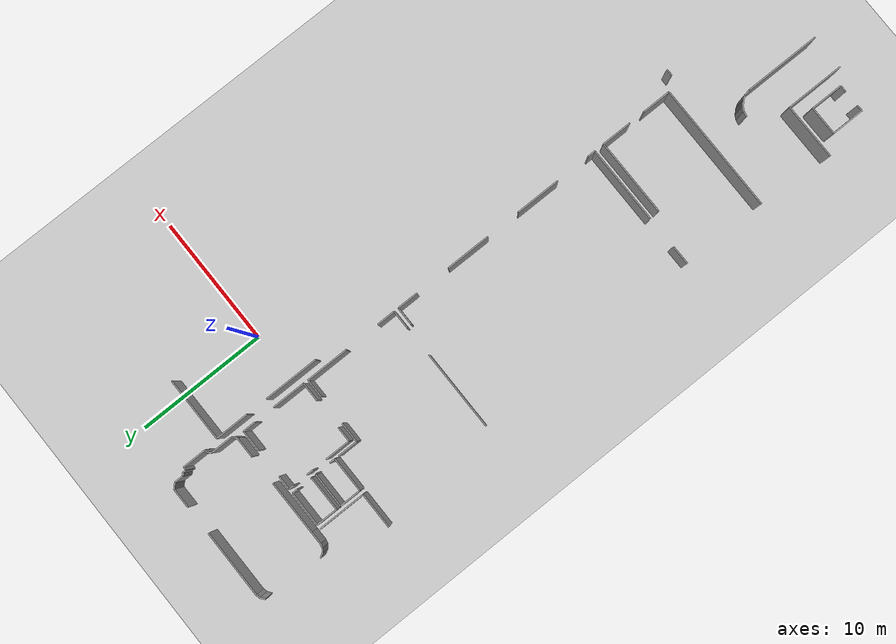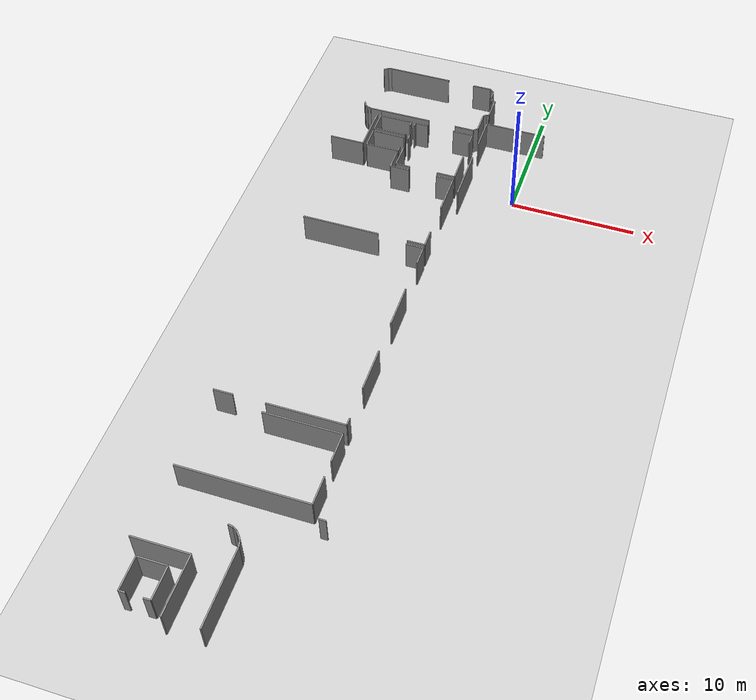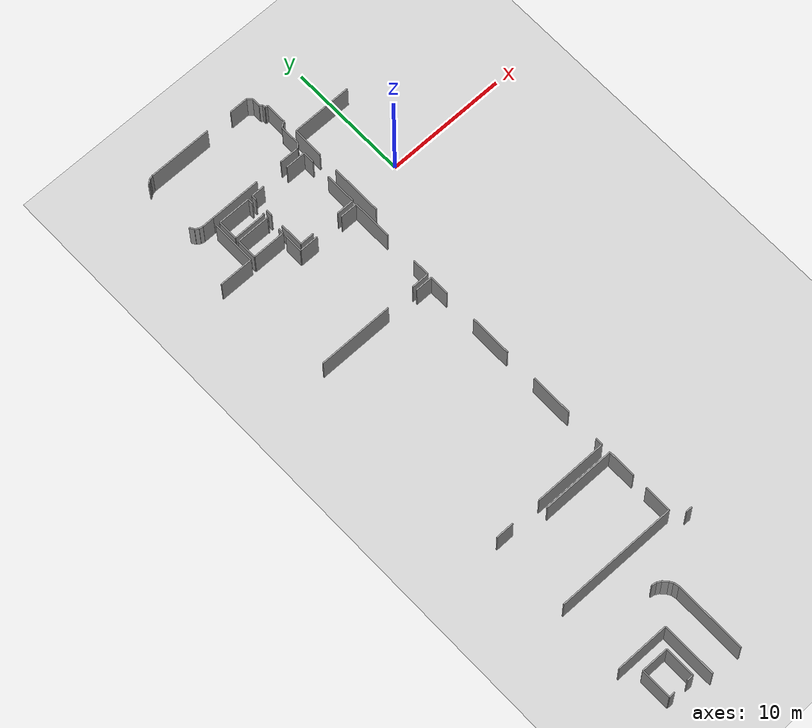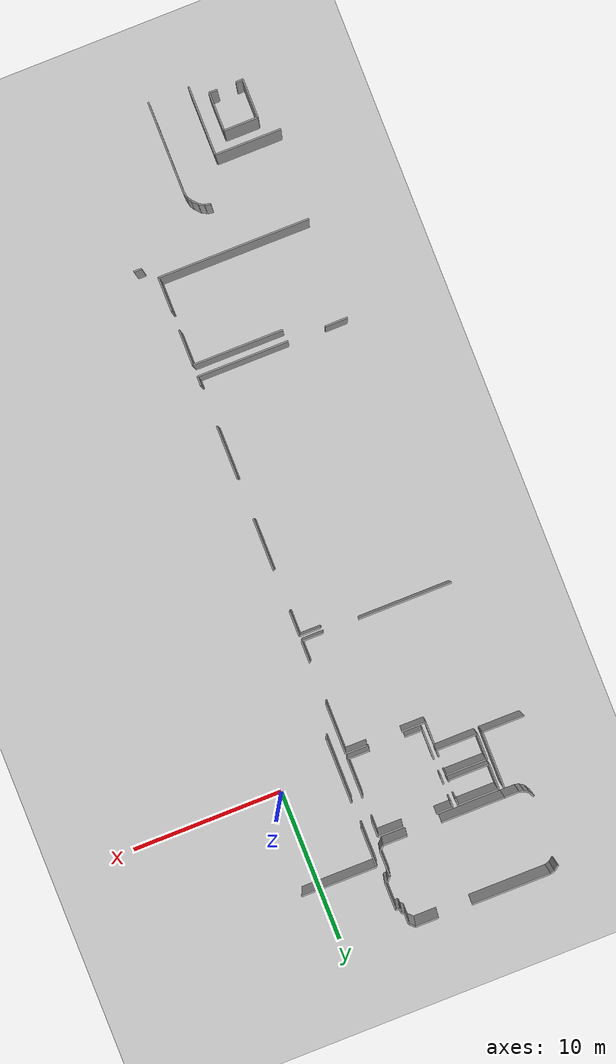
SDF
<sdf version="1.6">
 <world name="default">
  <model name="ground_plane">
   <static>1</static>
   <link name="link">
    <collision name="collision">
     <geometry><plane><normal>0 0 1</normal><size>100 100</size></plane></geometry>
     <surface><friction><ode><mu>100</mu><mu2>50</mu2></ode></friction></surface>
    </collision>
    <visual name="visual">
     <cast_shadows>0</cast_shadows>
     <geometry><plane><normal>0 0 1</normal><size>100 100</size></plane></geometry>
     <material>
      <script><uri>file://media/materials/scripts/gazebo.material</uri><name>Gazebo/Grey</name></script>
     </material>
    </visual>
   </link>
  </model>
  <model name="0510045926_A-40">
   <static>1</static>
   <link name="Wall_1083">
    <collision name="Wall_1083_Collision">
     <geometry><box><size>3.66740067139 0.1 2.5</size></box></geometry>
     <pose>1.8337003357 0 1.25 0 0 0</pose>
    </collision>
    <visual name="Wall_1083_Visual">
     <pose>1.8337003357 0 1.25 0 0 0</pose>
     <geometry><box><size>3.66740067139 0.1 2.5</size></box></geometry>
     <material>
      <script><uri>file://media/materials/scripts/gazebo.material</uri><name>Gazebo/Grey</name></script>
      <ambient>1 1 1 1</ambient>
     </material>
    </visual>
    <pose>120.832094833 -96.724697461 0 0 0 -1.57079632679</pose>
   </link>
   <link name="Wall_1084">
    <collision name="Wall_1084_Collision">
     <geometry><box><size>2.78634116624 0.1 2.5</size></box></geometry>
     <pose>1.39317058312 0 1.25 0 0 0</pose>
    </collision>
    <visual name="Wall_1084_Visual">
     <pose>1.39317058312 0 1.25 0 0 0</pose>
     <geometry><box><size>2.78634116624 0.1 2.5</size></box></geometry>
     <material>
      <script><uri>file://media/materials/scripts/gazebo.material</uri><name>Gazebo/Grey</name></script>
      <ambient>1 1 1 1</ambient>
     </material>
    </visual>
    <pose>120.832094833 -100.392098132 0 0 0 3.14159265359</pose>
   </link>
   <link name="Wall_1089">
    <collision name="Wall_1089_Collision">
     <geometry><box><size>0.963048044523 0.1 2.5</size></box></geometry>
     <pose>0.481524022261 0 1.25 0 0 0</pose>
    </collision>
    <visual name="Wall_1089_Visual">
     <pose>0.481524022261 0 1.25 0 0 0</pose>
     <geometry><box><size>0.963048044523 0.1 2.5</size></box></geometry>
     <material>
      <script><uri>file://media/materials/scripts/gazebo.material</uri><name>Gazebo/Grey</name></script>
      <ambient>1 1 1 1</ambient>
     </material>
    </visual>
    <pose>121.028308891 -96.1492546785 0 0 0 3.14159265359</pose>
   </link>
   <link name="Wall_1090">
    <collision name="Wall_1090_Collision">
     <geometry><box><size>0.297971849061 0.1 2.5</size></box></geometry>
     <pose>0.148985924531 0 1.25 0 0 0</pose>
    </collision>
    <visual name="Wall_1090_Visual">
     <pose>0.148985924531 0 1.25 0 0 0</pose>
     <geometry><box><size>0.297971849061 0.1 2.5</size></box></geometry>
     <material>
      <script><uri>file://media/materials/scripts/gazebo.material</uri><name>Gazebo/Grey</name></script>
      <ambient>1 1 1 1</ambient>
     </material>
    </visual>
    <pose>120.065260847 -96.1492546785 0 0 0 2.90074619835</pose>
   </link>
   <link name="Wall_1091">
    <collision name="Wall_1091_Collision">
     <geometry><box><size>0.314413232889 0.1 2.5</size></box></geometry>
     <pose>0.157206616445 0 1.25 0 0 0</pose>
    </collision>
    <visual name="Wall_1091_Visual">
     <pose>0.157206616445 0 1.25 0 0 0</pose>
     <geometry><box><size>0.314413232889 0.1 2.5</size></box></geometry>
     <material>
      <script><uri>file://media/materials/scripts/gazebo.material</uri><name>Gazebo/Grey</name></script>
      <ambient>1 1 1 1</ambient>
     </material>
    </visual>
    <pose>119.775889531 -96.0781810221 0 0 0 2.54978353014</pose>
   </link>
   <link name="Wall_1092">
    <collision name="Wall_1092_Collision">
     <geometry><box><size>0.408727519813 0.1 2.5</size></box></geometry>
     <pose>0.204363759906 0 1.25 0 0 0</pose>
    </collision>
    <visual name="Wall_1092_Visual">
     <pose>0.204363759906 0 1.25 0 0 0</pose>
     <geometry><box><size>0.408727519813 0.1 2.5</size></box></geometry>
     <material>
      <script><uri>file://media/materials/scripts/gazebo.material</uri><name>Gazebo/Grey</name></script>
      <ambient>1 1 1 1</ambient>
     </material>
    </visual>
    <pose>119.514947678 -95.9027813914 0 0 0 2.1072750657</pose>
   </link>
   <link name="Wall_1095">
    <collision name="Wall_1095_Collision">
     <geometry><box><size>0.394009426553 0.1 2.5</size></box></geometry>
     <pose>0.197004713276 0 1.25 0 0 0</pose>
    </collision>
    <visual name="Wall_1095_Visual">
     <pose>0.197004713276 0 1.25 0 0 0</pose>
     <geometry><box><size>0.394009426553 0.1 2.5</size></box></geometry>
     <material>
      <script><uri>file://media/materials/scripts/gazebo.material</uri><name>Gazebo/Grey</name></script>
      <ambient>1 1 1 1</ambient>
     </material>
    </visual>
    <pose>119.469003636 -91.0497198302 0 0 0 0.64968579994</pose>
   </link>
   <link name="Wall_1096">
    <collision name="Wall_1096_Collision">
     <geometry><box><size>0.318074464847 0.1 2.5</size></box></geometry>
     <pose>0.159037232424 0 1.25 0 0 0</pose>
    </collision>
    <visual name="Wall_1096_Visual">
     <pose>0.159037232424 0 1.25 0 0 0</pose>
     <geometry><box><size>0.318074464847 0.1 2.5</size></box></geometry>
     <material>
      <script><uri>file://media/materials/scripts/gazebo.material</uri><name>Gazebo/Grey</name></script>
      <ambient>1 1 1 1</ambient>
     </material>
    </visual>
    <pose>119.782743062 -90.8113692467 0 0 0 0.259882708532</pose>
   </link>
   <link name="Wall_1097">
    <collision name="Wall_1097_Collision">
     <geometry><box><size>5.21756788486 0.1 2.5</size></box></geometry>
     <pose>2.60878394243 0 1.25 0 0 0</pose>
    </collision>
    <visual name="Wall_1097_Visual">
     <pose>2.60878394243 0 1.25 0 0 0</pose>
     <geometry><box><size>5.21756788486 0.1 2.5</size></box></geometry>
     <material>
      <script><uri>file://media/materials/scripts/gazebo.material</uri><name>Gazebo/Grey</name></script>
      <ambient>1 1 1 1</ambient>
     </material>
    </visual>
    <pose>120.090136626 -90.7296345418 0 0 0 0.0</pose>
   </link>
   <link name="Wall_1098">
    <collision name="Wall_1098_Collision">
     <geometry><box><size>1.53011428898 0.1 2.5</size></box></geometry>
     <pose>0.765057144489 0 1.25 0 0 0</pose>
    </collision>
    <visual name="Wall_1098_Visual">
     <pose>0.765057144489 0 1.25 0 0 0</pose>
     <geometry><box><size>1.53011428898 0.1 2.5</size></box></geometry>
     <material>
      <script><uri>file://media/materials/scripts/gazebo.material</uri><name>Gazebo/Grey</name></script>
      <ambient>1 1 1 1</ambient>
     </material>
    </visual>
    <pose>127.513018536 -90.7296345418 0 0 0 0.0</pose>
   </link>
   <link name="Wall_1099">
    <collision name="Wall_1099_Collision">
     <geometry><box><size>0.472983838857 0.1 2.5</size></box></geometry>
     <pose>0.236491919429 0 1.25 0 0 0</pose>
    </collision>
    <visual name="Wall_1099_Visual">
     <pose>0.236491919429 0 1.25 0 0 0</pose>
     <geometry><box><size>0.472983838857 0.1 2.5</size></box></geometry>
     <material>
      <script><uri>file://media/materials/scripts/gazebo.material</uri><name>Gazebo/Grey</name></script>
      <ambient>1 1 1 1</ambient>
     </material>
    </visual>
    <pose>129.043132825 -90.7296345418 0 0 0 -0.773634000248</pose>
   </link>
   <link name="Wall_1100">
    <collision name="Wall_1100_Collision">
     <geometry><box><size>0.672915225627 0.1 2.5</size></box></geometry>
     <pose>0.336457612814 0 1.25 0 0 0</pose>
    </collision>
    <visual name="Wall_1100_Visual">
     <pose>0.336457612814 0 1.25 0 0 0</pose>
     <geometry><box><size>0.672915225627 0.1 2.5</size></box></geometry>
     <material>
      <script><uri>file://media/materials/scripts/gazebo.material</uri><name>Gazebo/Grey</name></script>
      <ambient>1 1 1 1</ambient>
     </material>
    </visual>
    <pose>129.381494197 -91.0601270442 0 0 0 -1.57079632679</pose>
   </link>
   <link name="Wall_1101">
    <collision name="Wall_1101_Collision">
     <geometry><box><size>0.232515854169 0.1 2.5</size></box></geometry>
     <pose>0.116257927084 0 1.25 0 0 0</pose>
    </collision>
    <visual name="Wall_1101_Visual">
     <pose>0.116257927084 0 1.25 0 0 0</pose>
     <geometry><box><size>0.232515854169 0.1 2.5</size></box></geometry>
     <material>
      <script><uri>file://media/materials/scripts/gazebo.material</uri><name>Gazebo/Grey</name></script>
      <ambient>1 1 1 1</ambient>
     </material>
    </visual>
    <pose>129.381494197 -91.7330422698 0 0 0 -0.685652700092</pose>
   </link>
   <link name="Wall_1102">
    <collision name="Wall_1102_Collision">
     <geometry><box><size>0.25865734248 0.1 2.5</size></box></geometry>
     <pose>0.12932867124 0 1.25 0 0 0</pose>
    </collision>
    <visual name="Wall_1102_Visual">
     <pose>0.12932867124 0 1.25 0 0 0</pose>
     <geometry><box><size>0.25865734248 0.1 2.5</size></box></geometry>
     <material>
      <script><uri>file://media/materials/scripts/gazebo.material</uri><name>Gazebo/Grey</name></script>
      <ambient>1 1 1 1</ambient>
     </material>
    </visual>
    <pose>129.561462848 -91.8802662724 0 0 0 -1.57079632679</pose>
   </link>
   <link name="Wall_1103">
    <collision name="Wall_1103_Collision">
     <geometry><box><size>0.249011631965 0.1 2.5</size></box></geometry>
     <pose>0.124505815983 0 1.25 0 0 0</pose>
    </collision>
    <visual name="Wall_1103_Visual">
     <pose>0.124505815983 0 1.25 0 0 0</pose>
     <geometry><box><size>0.249011631965 0.1 2.5</size></box></geometry>
     <material>
      <script><uri>file://media/materials/scripts/gazebo.material</uri><name>Gazebo/Grey</name></script>
      <ambient>1 1 1 1</ambient>
     </material>
    </visual>
    <pose>129.561462848 -92.1389236149 0 0 0 0.0</pose>
   </link>
   <link name="Wall_1104">
    <collision name="Wall_1104_Collision">
     <geometry><box><size>1.81847026646 0.1 2.5</size></box></geometry>
     <pose>0.909235133231 0 1.25 0 0 0</pose>
    </collision>
    <visual name="Wall_1104_Visual">
     <pose>0.909235133231 0 1.25 0 0 0</pose>
     <geometry><box><size>1.81847026646 0.1 2.5</size></box></geometry>
     <material>
      <script><uri>file://media/materials/scripts/gazebo.material</uri><name>Gazebo/Grey</name></script>
      <ambient>1 1 1 1</ambient>
     </material>
    </visual>
    <pose>129.81047448 -92.1389236149 0 0 0 -1.57079632679</pose>
   </link>
   <link name="Wall_1105">
    <collision name="Wall_1105_Collision">
     <geometry><box><size>0.19012203093 0.1 2.5</size></box></geometry>
     <pose>0.0950610154649 0 1.25 0 0 0</pose>
    </collision>
    <visual name="Wall_1105_Visual">
     <pose>0.0950610154649 0 1.25 0 0 0</pose>
     <geometry><box><size>0.19012203093 0.1 2.5</size></box></geometry>
     <material>
      <script><uri>file://media/materials/scripts/gazebo.material</uri><name>Gazebo/Grey</name></script>
      <ambient>1 1 1 1</ambient>
     </material>
    </visual>
    <pose>129.81047448 -93.9573938813 0 0 0 3.14159265359</pose>
   </link>
   <link name="Wall_1106">
    <collision name="Wall_1106_Collision">
     <geometry><box><size>0.34192645498 0.1 2.5</size></box></geometry>
     <pose>0.17096322749 0 1.25 0 0 0</pose>
    </collision>
    <visual name="Wall_1106_Visual">
     <pose>0.17096322749 0 1.25 0 0 0</pose>
     <geometry><box><size>0.34192645498 0.1 2.5</size></box></geometry>
     <material>
      <script><uri>file://media/materials/scripts/gazebo.material</uri><name>Gazebo/Grey</name></script>
      <ambient>1 1 1 1</ambient>
     </material>
    </visual>
    <pose>129.620352449 -93.9573938813 0 0 0 -2.32364296707</pose>
   </link>
   <link name="Wall_1107">
    <collision name="Wall_1107_Collision">
     <geometry><box><size>1.6230177113 0.1 2.5</size></box></geometry>
     <pose>0.811508855651 0 1.25 0 0 0</pose>
    </collision>
    <visual name="Wall_1107_Visual">
     <pose>0.811508855651 0 1.25 0 0 0</pose>
     <geometry><box><size>1.6230177113 0.1 2.5</size></box></geometry>
     <material>
      <script><uri>file://media/materials/scripts/gazebo.material</uri><name>Gazebo/Grey</name></script>
      <ambient>1 1 1 1</ambient>
     </material>
    </visual>
    <pose>129.386570886 -94.2069131823 0 0 0 -1.57079632679</pose>
   </link>
   <link name="Wall_1108">
    <collision name="Wall_1108_Collision">
     <geometry><box><size>0.436874594215 0.1 2.5</size></box></geometry>
     <pose>0.218437297107 0 1.25 0 0 0</pose>
    </collision>
    <visual name="Wall_1108_Visual">
     <pose>0.218437297107 0 1.25 0 0 0</pose>
     <geometry><box><size>0.436874594215 0.1 2.5</size></box></geometry>
     <material>
      <script><uri>file://media/materials/scripts/gazebo.material</uri><name>Gazebo/Grey</name></script>
      <ambient>1 1 1 1</ambient>
     </material>
    </visual>
    <pose>129.386570886 -95.8299308936 0 0 0 -2.35783787409</pose>
   </link>
   <link name="Wall_1109">
    <collision name="Wall_1109_Collision">
     <geometry><box><size>1.60017260745 0.1 2.5</size></box></geometry>
     <pose>0.800086303726 0 1.25 0 0 0</pose>
    </collision>
    <visual name="Wall_1109_Visual">
     <pose>0.800086303726 0 1.25 0 0 0</pose>
     <geometry><box><size>1.60017260745 0.1 2.5</size></box></geometry>
     <material>
      <script><uri>file://media/materials/scripts/gazebo.material</uri><name>Gazebo/Grey</name></script>
      <ambient>1 1 1 1</ambient>
     </material>
    </visual>
    <pose>129.077146647 -96.1383397955 0 0 0 3.14159265359</pose>
   </link>
   <link name="Wall_1110">
    <collision name="Wall_1110_Collision">
     <geometry><box><size>4.18523725808 0.1 2.5</size></box></geometry>
     <pose>2.09261862904 0 1.25 0 0 0</pose>
    </collision>
    <visual name="Wall_1110_Visual">
     <pose>2.09261862904 0 1.25 0 0 0</pose>
     <geometry><box><size>4.18523725808 0.1 2.5</size></box></geometry>
     <material>
      <script><uri>file://media/materials/scripts/gazebo.material</uri><name>Gazebo/Grey</name></script>
      <ambient>1 1 1 1</ambient>
     </material>
    </visual>
    <pose>125.213531917 -96.1383397955 0 0 0 -3.1389847022</pose>
   </link>
   <link name="Wall_1139">
    <collision name="Wall_1139_Collision">
     <geometry><box><size>5.96282593935 0.1 2.5</size></box></geometry>
     <pose>2.98141296967 0 1.25 0 0 0</pose>
    </collision>
    <visual name="Wall_1139_Visual">
     <pose>2.98141296967 0 1.25 0 0 0</pose>
     <geometry><box><size>5.96282593935 0.1 2.5</size></box></geometry>
     <material>
      <script><uri>file://media/materials/scripts/gazebo.material</uri><name>Gazebo/Grey</name></script>
      <ambient>1 1 1 1</ambient>
     </material>
    </visual>
    <pose>123.211539316 -127.997106287 0 0 0 0.0</pose>
   </link>
   <link name="Wall_1140">
    <collision name="Wall_1140_Collision">
     <geometry><box><size>2.33045442719 0.1 2.5</size></box></geometry>
     <pose>1.1652272136 0 1.25 0 0 0</pose>
    </collision>
    <visual name="Wall_1140_Visual">
     <pose>1.1652272136 0 1.25 0 0 0</pose>
     <geometry><box><size>2.33045442719 0.1 2.5</size></box></geometry>
     <material>
      <script><uri>file://media/materials/scripts/gazebo.material</uri><name>Gazebo/Grey</name></script>
      <ambient>1 1 1 1</ambient>
     </material>
    </visual>
    <pose>129.174365255 -127.997106287 0 0 0 -1.57079632679</pose>
   </link>
   <link name="Wall_1141">
    <collision name="Wall_1141_Collision">
     <geometry><box><size>2.22612845294 0.1 2.5</size></box></geometry>
     <pose>1.11306422647 0 1.25 0 0 0</pose>
    </collision>
    <visual name="Wall_1141_Visual">
     <pose>1.11306422647 0 1.25 0 0 0</pose>
     <geometry><box><size>2.22612845294 0.1 2.5</size></box></geometry>
     <material>
      <script><uri>file://media/materials/scripts/gazebo.material</uri><name>Gazebo/Grey</name></script>
      <ambient>1 1 1 1</ambient>
     </material>
    </visual>
    <pose>129.174365255 -131.566019177 0 0 0 -1.57079632679</pose>
   </link>
   <link name="Wall_1142">
    <collision name="Wall_1142_Collision">
     <geometry><box><size>9.96276066697 0.1 2.5</size></box></geometry>
     <pose>4.98138033348 0 1.25 0 0 0</pose>
    </collision>
    <visual name="Wall_1142_Visual">
     <pose>4.98138033348 0 1.25 0 0 0</pose>
     <geometry><box><size>9.96276066697 0.1 2.5</size></box></geometry>
     <material>
      <script><uri>file://media/materials/scripts/gazebo.material</uri><name>Gazebo/Grey</name></script>
      <ambient>1 1 1 1</ambient>
     </material>
    </visual>
    <pose>129.174365255 -133.79214763 0 0 0 3.14011491001</pose>
   </link>
   <link name="Wall_1157">
    <collision name="Wall_1157_Collision">
     <geometry><box><size>1.41005057652 0.1 2.5</size></box></geometry>
     <pose>0.705025288261 0 1.25 0 0 0</pose>
    </collision>
    <visual name="Wall_1157_Visual">
     <pose>0.705025288261 0 1.25 0 0 0</pose>
     <geometry><box><size>1.41005057652 0.1 2.5</size></box></geometry>
     <material>
      <script><uri>file://media/materials/scripts/gazebo.material</uri><name>Gazebo/Grey</name></script>
      <ambient>1 1 1 1</ambient>
     </material>
    </visual>
    <pose>127.758222651 -110.030193612 0 0 0 0.0</pose>
   </link>
   <link name="Wall_1158">
    <collision name="Wall_1158_Collision">
     <geometry><box><size>1.63139424938 0.1 2.5</size></box></geometry>
     <pose>0.81569712469 0 1.25 0 0 0</pose>
    </collision>
    <visual name="Wall_1158_Visual">
     <pose>0.81569712469 0 1.25 0 0 0</pose>
     <geometry><box><size>1.63139424938 0.1 2.5</size></box></geometry>
     <material>
      <script><uri>file://media/materials/scripts/gazebo.material</uri><name>Gazebo/Grey</name></script>
      <ambient>1 1 1 1</ambient>
     </material>
    </visual>
    <pose>129.168273227 -110.030193612 0 0 0 -1.57079632679</pose>
   </link>
   <link name="Wall_1159">
    <collision name="Wall_1159_Collision">
     <geometry><box><size>3.4427571502 0.1 2.5</size></box></geometry>
     <pose>1.7213785751 0 1.25 0 0 0</pose>
    </collision>
    <visual name="Wall_1159_Visual">
     <pose>1.7213785751 0 1.25 0 0 0</pose>
     <geometry><box><size>3.4427571502 0.1 2.5</size></box></geometry>
     <material>
      <script><uri>file://media/materials/scripts/gazebo.material</uri><name>Gazebo/Grey</name></script>
      <ambient>1 1 1 1</ambient>
     </material>
    </visual>
    <pose>129.168273227 -114.366701992 0 0 0 -1.57079632679</pose>
   </link>
   <link name="Wall_1160">
    <collision name="Wall_1160_Collision">
     <geometry><box><size>3.46230240572 0.1 2.5</size></box></geometry>
     <pose>1.73115120286 0 1.25 0 0 0</pose>
    </collision>
    <visual name="Wall_1160_Visual">
     <pose>1.73115120286 0 1.25 0 0 0</pose>
     <geometry><box><size>3.46230240572 0.1 2.5</size></box></geometry>
     <material>
      <script><uri>file://media/materials/scripts/gazebo.material</uri><name>Gazebo/Grey</name></script>
      <ambient>1 1 1 1</ambient>
     </material>
    </visual>
    <pose>129.168273227 -120.487159148 0 0 0 -1.57079632679</pose>
   </link>
   <link name="Wall_1161">
    <collision name="Wall_1161_Collision">
     <geometry><box><size>0.594734203563 0.1 2.5</size></box></geometry>
     <pose>0.297367101781 0 1.25 0 0 0</pose>
    </collision>
    <visual name="Wall_1161_Visual">
     <pose>0.297367101781 0 1.25 0 0 0</pose>
     <geometry><box><size>0.594734203563 0.1 2.5</size></box></geometry>
     <material>
      <script><uri>file://media/materials/scripts/gazebo.material</uri><name>Gazebo/Grey</name></script>
      <ambient>1 1 1 1</ambient>
     </material>
    </visual>
    <pose>129.168273227 -126.632492084 0 0 0 -1.57079632679</pose>
   </link>
   <link name="Wall_1162">
    <collision name="Wall_1162_Collision">
     <geometry><box><size>6.00013960897 0.1 2.5</size></box></geometry>
     <pose>3.00006980448 0 1.25 0 0 0</pose>
    </collision>
    <visual name="Wall_1162_Visual">
     <pose>3.00006980448 0 1.25 0 0 0</pose>
     <geometry><box><size>6.00013960897 0.1 2.5</size></box></geometry>
     <material>
      <script><uri>file://media/materials/scripts/gazebo.material</uri><name>Gazebo/Grey</name></script>
      <ambient>1 1 1 1</ambient>
     </material>
    </visual>
    <pose>129.168273227 -127.227226287 0 0 0 3.14159265359</pose>
   </link>
   <link name="Wall_1163">
    <collision name="Wall_1163_Collision">
     <geometry><box><size>1.49130718656 0.1 2.5</size></box></geometry>
     <pose>0.745653593279 0 1.25 0 0 0</pose>
    </collision>
    <visual name="Wall_1163_Visual">
     <pose>0.745653593279 0 1.25 0 0 0</pose>
     <geometry><box><size>1.49130718656 0.1 2.5</size></box></geometry>
     <material>
      <script><uri>file://media/materials/scripts/gazebo.material</uri><name>Gazebo/Grey</name></script>
      <ambient>1 1 1 1</ambient>
     </material>
    </visual>
    <pose>120.717869313 -127.227226287 0 0 0 -3.13529486451</pose>
   </link>
   <link name="Wall_1166">
    <collision name="Wall_1166_Collision">
     <geometry><box><size>1.51437655077 0.1 2.5</size></box></geometry>
     <pose>0.757188275385 0 1.25 0 0 0</pose>
    </collision>
    <visual name="Wall_1166_Visual">
     <pose>0.757188275385 0 1.25 0 0 0</pose>
     <geometry><box><size>1.51437655077 0.1 2.5</size></box></geometry>
     <material>
      <script><uri>file://media/materials/scripts/gazebo.material</uri><name>Gazebo/Grey</name></script>
      <ambient>1 1 1 1</ambient>
     </material>
    </visual>
    <pose>123.871762817 -100.726651987 0 0 0 -1.57079632679</pose>
   </link>
   <link name="Wall_1167">
    <collision name="Wall_1167_Collision">
     <geometry><box><size>1.57351998629 0.1 2.5</size></box></geometry>
     <pose>0.786759993146 0 1.25 0 0 0</pose>
    </collision>
    <visual name="Wall_1167_Visual">
     <pose>0.786759993146 0 1.25 0 0 0</pose>
     <geometry><box><size>1.57351998629 0.1 2.5</size></box></geometry>
     <material>
      <script><uri>file://media/materials/scripts/gazebo.material</uri><name>Gazebo/Grey</name></script>
      <ambient>1 1 1 1</ambient>
     </material>
    </visual>
    <pose>123.871762817 -102.241028537 0 0 0 0.0</pose>
   </link>
   <link name="Wall_1168">
    <collision name="Wall_1168_Collision">
     <geometry><box><size>1.42350380434 0.1 2.5</size></box></geometry>
     <pose>0.711751902172 0 1.25 0 0 0</pose>
    </collision>
    <visual name="Wall_1168_Visual">
     <pose>0.711751902172 0 1.25 0 0 0</pose>
     <geometry><box><size>1.42350380434 0.1 2.5</size></box></geometry>
     <material>
      <script><uri>file://media/materials/scripts/gazebo.material</uri><name>Gazebo/Grey</name></script>
      <ambient>1 1 1 1</ambient>
     </material>
    </visual>
    <pose>127.743500251 -102.241028537 0 0 0 0.0</pose>
   </link>
   <link name="Wall_1169">
    <collision name="Wall_1169_Collision">
     <geometry><box><size>3.2957869821 0.1 2.5</size></box></geometry>
     <pose>1.64789349105 0 1.25 0 0 0</pose>
    </collision>
    <visual name="Wall_1169_Visual">
     <pose>1.64789349105 0 1.25 0 0 0</pose>
     <geometry><box><size>3.2957869821 0.1 2.5</size></box></geometry>
     <material>
      <script><uri>file://media/materials/scripts/gazebo.material</uri><name>Gazebo/Grey</name></script>
      <ambient>1 1 1 1</ambient>
     </material>
    </visual>
    <pose>129.167004055 -102.241028537 0 0 0 -1.57079632679</pose>
   </link>
   <link name="Wall_1170">
    <collision name="Wall_1170_Collision">
     <geometry><box><size>1.42324996986 0.1 2.5</size></box></geometry>
     <pose>0.711624984929 0 1.25 0 0 0</pose>
    </collision>
    <visual name="Wall_1170_Visual">
     <pose>0.711624984929 0 1.25 0 0 0</pose>
     <geometry><box><size>1.42324996986 0.1 2.5</size></box></geometry>
     <material>
      <script><uri>file://media/materials/scripts/gazebo.material</uri><name>Gazebo/Grey</name></script>
      <ambient>1 1 1 1</ambient>
     </material>
    </visual>
    <pose>129.167004055 -108.251321526 0 0 0 -1.57079632679</pose>
   </link>
   <link name="Wall_1171">
    <collision name="Wall_1171_Collision">
     <geometry><box><size>1.44406439781 0.1 2.5</size></box></geometry>
     <pose>0.722032198905 0 1.25 0 0 0</pose>
    </collision>
    <visual name="Wall_1171_Visual">
     <pose>0.722032198905 0 1.25 0 0 0</pose>
     <geometry><box><size>1.44406439781 0.1 2.5</size></box></geometry>
     <material>
      <script><uri>file://media/materials/scripts/gazebo.material</uri><name>Gazebo/Grey</name></script>
      <ambient>1 1 1 1</ambient>
     </material>
    </visual>
    <pose>129.167004055 -109.674571496 0 0 0 3.14159265359</pose>
   </link>
   <link name="Wall_1172">
    <collision name="Wall_1172_Collision">
     <geometry><box><size>6.18239410479 0.1 2.5</size></box></geometry>
     <pose>3.09119705239 0 1.25 0 0 0</pose>
    </collision>
    <visual name="Wall_1172_Visual">
     <pose>3.09119705239 0 1.25 0 0 0</pose>
     <geometry><box><size>6.18239410479 0.1 2.5</size></box></geometry>
     <material>
      <script><uri>file://media/materials/scripts/gazebo.material</uri><name>Gazebo/Grey</name></script>
      <ambient>1 1 1 1</ambient>
     </material>
    </visual>
    <pose>125.391977561 -109.674571496 0 0 0 -3.14093573137</pose>
   </link>
   <link name="Wall_1173">
    <collision name="Wall_1173_Collision">
     <geometry><box><size>1.64941649797 0.1 2.5</size></box></geometry>
     <pose>0.824708248986 0 1.25 0 0 0</pose>
    </collision>
    <visual name="Wall_1173_Visual">
     <pose>0.824708248986 0 1.25 0 0 0</pose>
     <geometry><box><size>1.64941649797 0.1 2.5</size></box></geometry>
     <material>
      <script><uri>file://media/materials/scripts/gazebo.material</uri><name>Gazebo/Grey</name></script>
      <ambient>1 1 1 1</ambient>
     </material>
    </visual>
    <pose>121.169694701 -98.3964513939 0 0 0 1.57079632679</pose>
   </link>
   <link name="Wall_1174">
    <collision name="Wall_1174_Collision">
     <geometry><box><size>2.6977529302 0.1 2.5</size></box></geometry>
     <pose>1.3488764651 0 1.25 0 0 0</pose>
    </collision>
    <visual name="Wall_1174_Visual">
     <pose>1.3488764651 0 1.25 0 0 0</pose>
     <geometry><box><size>2.6977529302 0.1 2.5</size></box></geometry>
     <material>
      <script><uri>file://media/materials/scripts/gazebo.material</uri><name>Gazebo/Grey</name></script>
      <ambient>1 1 1 1</ambient>
     </material>
    </visual>
    <pose>121.169694701 -96.7470348959 0 0 0 0.0</pose>
   </link>
   <link name="Wall_1175">
    <collision name="Wall_1175_Collision">
     <geometry><box><size>0.440402835331 0.1 2.5</size></box></geometry>
     <pose>0.220201417666 0 1.25 0 0 0</pose>
    </collision>
    <visual name="Wall_1175_Visual">
     <pose>0.220201417666 0 1.25 0 0 0</pose>
     <geometry><box><size>0.440402835331 0.1 2.5</size></box></geometry>
     <material>
      <script><uri>file://media/materials/scripts/gazebo.material</uri><name>Gazebo/Grey</name></script>
      <ambient>1 1 1 1</ambient>
     </material>
    </visual>
    <pose>123.867447631 -96.7470348959 0 0 0 -1.57079632679</pose>
   </link>
   <link name="Wall_1176">
    <collision name="Wall_1176_Collision">
     <geometry><box><size>0.101279960402 0.1 2.5</size></box></geometry>
     <pose>0.0506399802009 0 1.25 0 0 0</pose>
    </collision>
    <visual name="Wall_1176_Visual">
     <pose>0.0506399802009 0 1.25 0 0 0</pose>
     <geometry><box><size>0.101279960402 0.1 2.5</size></box></geometry>
     <material>
      <script><uri>file://media/materials/scripts/gazebo.material</uri><name>Gazebo/Grey</name></script>
      <ambient>1 1 1 1</ambient>
     </material>
    </visual>
    <pose>123.867447631 -98.2857795574 0 0 0 -1.57079632679</pose>
   </link>
   <link name="Wall_1177">
    <collision name="Wall_1177_Collision">
     <geometry><box><size>2.69776927845 0.1 2.5</size></box></geometry>
     <pose>1.34888463922 0 1.25 0 0 0</pose>
    </collision>
    <visual name="Wall_1177_Visual">
     <pose>1.34888463922 0 1.25 0 0 0</pose>
     <geometry><box><size>2.69776927845 0.1 2.5</size></box></geometry>
     <material>
      <script><uri>file://media/materials/scripts/gazebo.material</uri><name>Gazebo/Grey</name></script>
      <ambient>1 1 1 1</ambient>
     </material>
    </visual>
    <pose>123.867447631 -98.3870595178 0 0 0 -3.13811129769</pose>
   </link>
   <link name="Wall_1178">
    <collision name="Wall_1178_Collision">
     <geometry><box><size>1.66058521541 0.1 2.5</size></box></geometry>
     <pose>0.830292607705 0 1.25 0 0 0</pose>
    </collision>
    <visual name="Wall_1178_Visual">
     <pose>0.830292607705 0 1.25 0 0 0</pose>
     <geometry><box><size>1.66058521541 0.1 2.5</size></box></geometry>
     <material>
      <script><uri>file://media/materials/scripts/gazebo.material</uri><name>Gazebo/Grey</name></script>
      <ambient>1 1 1 1</ambient>
     </material>
    </visual>
    <pose>121.172994549 -100.392859636 0 0 0 1.57079632679</pose>
   </link>
   <link name="Wall_1179">
    <collision name="Wall_1179_Collision">
     <geometry><box><size>2.70587563379 0.1 2.5</size></box></geometry>
     <pose>1.3529378169 0 1.25 0 0 0</pose>
    </collision>
    <visual name="Wall_1179_Visual">
     <pose>1.3529378169 0 1.25 0 0 0</pose>
     <geometry><box><size>2.70587563379 0.1 2.5</size></box></geometry>
     <material>
      <script><uri>file://media/materials/scripts/gazebo.material</uri><name>Gazebo/Grey</name></script>
      <ambient>1 1 1 1</ambient>
     </material>
    </visual>
    <pose>121.172994549 -98.7322744205 0 0 0 0.0</pose>
   </link>
   <link name="Wall_1180">
    <collision name="Wall_1180_Collision">
     <geometry><box><size>0.0860498911685 0.1 2.5</size></box></geometry>
     <pose>0.0430249455842 0 1.25 0 0 0</pose>
    </collision>
    <visual name="Wall_1180_Visual">
     <pose>0.0430249455842 0 1.25 0 0 0</pose>
     <geometry><box><size>0.0860498911685 0.1 2.5</size></box></geometry>
     <material>
      <script><uri>file://media/materials/scripts/gazebo.material</uri><name>Gazebo/Grey</name></script>
      <ambient>1 1 1 1</ambient>
     </material>
    </visual>
    <pose>123.878870183 -98.7322744205 0 0 0 -1.57079632679</pose>
   </link>
   <link name="Wall_1181">
    <collision name="Wall_1181_Collision">
     <geometry><box><size>0.44141817328 0.1 2.5</size></box></geometry>
     <pose>0.22070908664 0 1.25 0 0 0</pose>
    </collision>
    <visual name="Wall_1181_Visual">
     <pose>0.22070908664 0 1.25 0 0 0</pose>
     <geometry><box><size>0.44141817328 0.1 2.5</size></box></geometry>
     <material>
      <script><uri>file://media/materials/scripts/gazebo.material</uri><name>Gazebo/Grey</name></script>
      <ambient>1 1 1 1</ambient>
     </material>
    </visual>
    <pose>123.878870183 -99.9445879314 0 0 0 -1.57079632679</pose>
   </link>
   <link name="Wall_1182">
    <collision name="Wall_1182_Collision">
     <geometry><box><size>2.7058843132 0.1 2.5</size></box></geometry>
     <pose>1.3529421566 0 1.25 0 0 0</pose>
    </collision>
    <visual name="Wall_1182_Visual">
     <pose>1.3529421566 0 1.25 0 0 0</pose>
     <geometry><box><size>2.7058843132 0.1 2.5</size></box></geometry>
     <material>
      <script><uri>file://media/materials/scripts/gazebo.material</uri><name>Gazebo/Grey</name></script>
      <ambient>1 1 1 1</ambient>
     </material>
    </visual>
    <pose>123.878870183 -100.386006105 0 0 0 -3.13905982599</pose>
   </link>
   <link name="Wall_1183">
    <collision name="Wall_1183_Collision">
     <geometry><box><size>1.96036374482 0.1 2.5</size></box></geometry>
     <pose>0.98018187241 0 1.25 0 0 0</pose>
    </collision>
    <visual name="Wall_1183_Visual">
     <pose>0.98018187241 0 1.25 0 0 0</pose>
     <geometry><box><size>1.96036374482 0.1 2.5</size></box></geometry>
     <material>
      <script><uri>file://media/materials/scripts/gazebo.material</uri><name>Gazebo/Grey</name></script>
      <ambient>1 1 1 1</ambient>
     </material>
    </visual>
    <pose>124.221292906 -101.87576071 0 0 0 1.57079632679</pose>
   </link>
   <link name="Wall_1184">
    <collision name="Wall_1184_Collision">
     <geometry><box><size>0.527468064449 0.1 2.5</size></box></geometry>
     <pose>0.263734032224 0 1.25 0 0 0</pose>
    </collision>
    <visual name="Wall_1184_Visual">
     <pose>0.263734032224 0 1.25 0 0 0</pose>
     <geometry><box><size>0.527468064449 0.1 2.5</size></box></geometry>
     <material>
      <script><uri>file://media/materials/scripts/gazebo.material</uri><name>Gazebo/Grey</name></script>
      <ambient>1 1 1 1</ambient>
     </material>
    </visual>
    <pose>124.221292906 -98.7967483802 0 0 0 1.57079632679</pose>
   </link>
   <link name="Wall_1185">
    <collision name="Wall_1185_Collision">
     <geometry><box><size>0.412481041737 0.1 2.5</size></box></geometry>
     <pose>0.206240520868 0 1.25 0 0 0</pose>
    </collision>
    <visual name="Wall_1185_Visual">
     <pose>0.206240520868 0 1.25 0 0 0</pose>
     <geometry><box><size>0.412481041737 0.1 2.5</size></box></geometry>
     <material>
      <script><uri>file://media/materials/scripts/gazebo.material</uri><name>Gazebo/Grey</name></script>
      <ambient>1 1 1 1</ambient>
     </material>
    </visual>
    <pose>124.221292906 -97.1534239099 0 0 0 1.57079632679</pose>
   </link>
   <link name="Wall_1186">
    <collision name="Wall_1186_Collision">
     <geometry><box><size>1.09250363301 0.1 2.5</size></box></geometry>
     <pose>0.546251816503 0 1.25 0 0 0</pose>
    </collision>
    <visual name="Wall_1186_Visual">
     <pose>0.546251816503 0 1.25 0 0 0</pose>
     <geometry><box><size>1.09250363301 0.1 2.5</size></box></geometry>
     <material>
      <script><uri>file://media/materials/scripts/gazebo.material</uri><name>Gazebo/Grey</name></script>
      <ambient>1 1 1 1</ambient>
     </material>
    </visual>
    <pose>124.221292906 -96.7409428682 0 0 0 0.0</pose>
   </link>
   <link name="Wall_1187">
    <collision name="Wall_1187_Collision">
     <geometry><box><size>1.6707385949 0.1 2.5</size></box></geometry>
     <pose>0.83536929745 0 1.25 0 0 0</pose>
    </collision>
    <visual name="Wall_1187_Visual">
     <pose>0.83536929745 0 1.25 0 0 0</pose>
     <geometry><box><size>1.6707385949 0.1 2.5</size></box></geometry>
     <material>
      <script><uri>file://media/materials/scripts/gazebo.material</uri><name>Gazebo/Grey</name></script>
      <ambient>1 1 1 1</ambient>
     </material>
    </visual>
    <pose>127.512764702 -96.7409428682 0 0 0 0.0</pose>
   </link>
   <link name="Wall_1188">
    <collision name="Wall_1188_Collision">
     <geometry><box><size>0.96964774119 0.1 2.5</size></box></geometry>
     <pose>0.484823870595 0 1.25 0 0 0</pose>
    </collision>
    <visual name="Wall_1188_Visual">
     <pose>0.484823870595 0 1.25 0 0 0</pose>
     <geometry><box><size>0.96964774119 0.1 2.5</size></box></geometry>
     <material>
      <script><uri>file://media/materials/scripts/gazebo.material</uri><name>Gazebo/Grey</name></script>
      <ambient>1 1 1 1</ambient>
     </material>
    </visual>
    <pose>129.183503297 -96.7409428682 0 0 0 -1.57079632679</pose>
   </link>
   <link name="Wall_1189">
    <collision name="Wall_1189_Collision">
     <geometry><box><size>2.58022756262 0.1 2.5</size></box></geometry>
     <pose>1.29011378131 0 1.25 0 0 0</pose>
    </collision>
    <visual name="Wall_1189_Visual">
     <pose>1.29011378131 0 1.25 0 0 0</pose>
     <geometry><box><size>2.58022756262 0.1 2.5</size></box></geometry>
     <material>
      <script><uri>file://media/materials/scripts/gazebo.material</uri><name>Gazebo/Grey</name></script>
      <ambient>1 1 1 1</ambient>
     </material>
    </visual>
    <pose>129.183503297 -99.2942639752 0 0 0 -1.57079632679</pose>
   </link>
   <link name="Wall_1190">
    <collision name="Wall_1190_Collision">
     <geometry><box><size>1.46259431538 0.1 2.5</size></box></geometry>
     <pose>0.731297157688 0 1.25 0 0 0</pose>
    </collision>
    <visual name="Wall_1190_Visual">
     <pose>0.731297157688 0 1.25 0 0 0</pose>
     <geometry><box><size>1.46259431538 0.1 2.5</size></box></geometry>
     <material>
      <script><uri>file://media/materials/scripts/gazebo.material</uri><name>Gazebo/Grey</name></script>
      <ambient>1 1 1 1</ambient>
     </material>
    </visual>
    <pose>129.183503297 -101.874491538 0 0 0 3.14159265359</pose>
   </link>
   <link name="Wall_1191">
    <collision name="Wall_1191_Collision">
     <geometry><box><size>1.17296985209 0.1 2.5</size></box></geometry>
     <pose>0.586484926044 0 1.25 0 0 0</pose>
    </collision>
    <visual name="Wall_1191_Visual">
     <pose>0.586484926044 0 1.25 0 0 0</pose>
     <geometry><box><size>1.17296985209 0.1 2.5</size></box></geometry>
     <material>
      <script><uri>file://media/materials/scripts/gazebo.material</uri><name>Gazebo/Grey</name></script>
      <ambient>1 1 1 1</ambient>
     </material>
    </visual>
    <pose>125.394262071 -101.874491538 0 0 0 -3.14051063713</pose>
   </link>
   <link name="Wall_1192">
    <collision name="Wall_1192_Collision">
     <geometry><box><size>4.23421308136 0.1 2.5</size></box></geometry>
     <pose>2.11710654068 0 1.25 0 0 0</pose>
    </collision>
    <visual name="Wall_1192_Visual">
     <pose>2.11710654068 0 1.25 0 0 0</pose>
     <geometry><box><size>4.23421308136 0.1 2.5</size></box></geometry>
     <material>
      <script><uri>file://media/materials/scripts/gazebo.material</uri><name>Gazebo/Grey</name></script>
      <ambient>1 1 1 1</ambient>
     </material>
    </visual>
    <pose>129.933330372 -103.512485484 0 0 0 1.57079632679</pose>
   </link>
   <link name="Wall_1193">
    <collision name="Wall_1193_Collision">
     <geometry><box><size>2.56702816928 0.1 2.5</size></box></geometry>
     <pose>1.28351408464 0 1.25 0 0 0</pose>
    </collision>
    <visual name="Wall_1193_Visual">
     <pose>1.28351408464 0 1.25 0 0 0</pose>
     <geometry><box><size>2.56702816928 0.1 2.5</size></box></geometry>
     <material>
      <script><uri>file://media/materials/scripts/gazebo.material</uri><name>Gazebo/Grey</name></script>
      <ambient>1 1 1 1</ambient>
     </material>
    </visual>
    <pose>129.933330372 -97.6113413249 0 0 0 1.57079632679</pose>
   </link>
   <link name="Wall_1194">
    <collision name="Wall_1194_Collision">
     <geometry><box><size>4.96804858392 0.1 2.5</size></box></geometry>
     <pose>2.48402429196 0 1.25 0 0 0</pose>
    </collision>
    <visual name="Wall_1194_Visual">
     <pose>2.48402429196 0 1.25 0 0 0</pose>
     <geometry><box><size>4.96804858392 0.1 2.5</size></box></geometry>
     <material>
      <script><uri>file://media/materials/scripts/gazebo.material</uri><name>Gazebo/Grey</name></script>
      <ambient>1 1 1 1</ambient>
     </material>
    </visual>
    <pose>129.933330372 -95.0443131556 0 0 0 0.0</pose>
   </link>
   <link name="Wall_1485">
    <collision name="Wall_1485_Collision">
     <geometry><box><size>2.52057645812 0.1 2.5</size></box></geometry>
     <pose>1.26028822906 0 1.25 0 0 0</pose>
    </collision>
    <visual name="Wall_1485_Visual">
     <pose>1.26028822906 0 1.25 0 0 0</pose>
     <geometry><box><size>2.52057645812 0.1 2.5</size></box></geometry>
     <material>
      <script><uri>file://media/materials/scripts/gazebo.material</uri><name>Gazebo/Grey</name></script>
      <ambient>1 1 1 1</ambient>
     </material>
    </visual>
    <pose>119.86295476 -143.2741349 0 0 0 1.57079632679</pose>
   </link>
   <link name="Wall_1486">
    <collision name="Wall_1486_Collision">
     <geometry><box><size>2.23552032897 0.1 2.5</size></box></geometry>
     <pose>1.11776016448 0 1.25 0 0 0</pose>
    </collision>
    <visual name="Wall_1486_Visual">
     <pose>1.11776016448 0 1.25 0 0 0</pose>
     <geometry><box><size>2.23552032897 0.1 2.5</size></box></geometry>
     <material>
      <script><uri>file://media/materials/scripts/gazebo.material</uri><name>Gazebo/Grey</name></script>
      <ambient>1 1 1 1</ambient>
     </material>
    </visual>
    <pose>119.86295476 -140.753558442 0 0 0 0.0</pose>
   </link>
   <link name="Wall_1487">
    <collision name="Wall_1487_Collision">
     <geometry><box><size>2.5050925544 0.1 2.5</size></box></geometry>
     <pose>1.2525462772 0 1.25 0 0 0</pose>
    </collision>
    <visual name="Wall_1487_Visual">
     <pose>1.2525462772 0 1.25 0 0 0</pose>
     <geometry><box><size>2.5050925544 0.1 2.5</size></box></geometry>
     <material>
      <script><uri>file://media/materials/scripts/gazebo.material</uri><name>Gazebo/Grey</name></script>
      <ambient>1 1 1 1</ambient>
     </material>
    </visual>
    <pose>122.098475089 -140.753558442 0 0 0 -1.57079632679</pose>
   </link>
   <link name="Wall_1488">
    <collision name="Wall_1488_Collision">
     <geometry><box><size>0.53559076804 0.1 2.5</size></box></geometry>
     <pose>0.26779538402 0 1.25 0 0 0</pose>
    </collision>
    <visual name="Wall_1488_Visual">
     <pose>0.26779538402 0 1.25 0 0 0</pose>
     <geometry><box><size>0.53559076804 0.1 2.5</size></box></geometry>
     <material>
      <script><uri>file://media/materials/scripts/gazebo.material</uri><name>Gazebo/Grey</name></script>
      <ambient>1 1 1 1</ambient>
     </material>
    </visual>
    <pose>122.098475089 -143.258650997 0 0 0 3.14159265359</pose>
   </link>
   <link name="Wall_1489">
    <collision name="Wall_1489_Collision">
     <geometry><box><size>0.478982179922 0.1 2.5</size></box></geometry>
     <pose>0.239491089961 0 1.25 0 0 0</pose>
    </collision>
    <visual name="Wall_1489_Visual">
     <pose>0.239491089961 0 1.25 0 0 0</pose>
     <geometry><box><size>0.478982179922 0.1 2.5</size></box></geometry>
     <material>
      <script><uri>file://media/materials/scripts/gazebo.material</uri><name>Gazebo/Grey</name></script>
      <ambient>1 1 1 1</ambient>
     </material>
    </visual>
    <pose>120.341686603 -143.258650997 0 0 0 -3.1092603405</pose>
   </link>
   <link name="Wall_1495">
    <collision name="Wall_1495_Collision">
     <geometry><box><size>0.391730437347 0.1 2.5</size></box></geometry>
     <pose>0.195865218674 0 1.25 0 0 0</pose>
    </collision>
    <visual name="Wall_1495_Visual">
     <pose>0.195865218674 0 1.25 0 0 0</pose>
     <geometry><box><size>0.391730437347 0.1 2.5</size></box></geometry>
     <material>
      <script><uri>file://media/materials/scripts/gazebo.material</uri><name>Gazebo/Grey</name></script>
      <ambient>1 1 1 1</ambient>
     </material>
    </visual>
    <pose>124.503049187 -136.845268842 0 0 0 -0.201589206634</pose>
   </link>
   <link name="Wall_1496">
    <collision name="Wall_1496_Collision">
     <geometry><box><size>0.371034307752 0.1 2.5</size></box></geometry>
     <pose>0.185517153876 0 1.25 0 0 0</pose>
    </collision>
    <visual name="Wall_1496_Visual">
     <pose>0.185517153876 0 1.25 0 0 0</pose>
     <geometry><box><size>0.371034307752 0.1 2.5</size></box></geometry>
     <material>
      <script><uri>file://media/materials/scripts/gazebo.material</uri><name>Gazebo/Grey</name></script>
      <ambient>1 1 1 1</ambient>
     </material>
    </visual>
    <pose>124.886846931 -136.923703699 0 0 0 -0.49394136892</pose>
   </link>
   <link name="Wall_1497">
    <collision name="Wall_1497_Collision">
     <geometry><box><size>0.489353524371 0.1 2.5</size></box></geometry>
     <pose>0.244676762186 0 1.25 0 0 0</pose>
    </collision>
    <visual name="Wall_1497_Visual">
     <pose>0.244676762186 0 1.25 0 0 0</pose>
     <geometry><box><size>0.489353524371 0.1 2.5</size></box></geometry>
     <material>
      <script><uri>file://media/materials/scripts/gazebo.material</uri><name>Gazebo/Grey</name></script>
      <ambient>1 1 1 1</ambient>
     </material>
    </visual>
    <pose>125.213531917 -137.099610999 0 0 0 -0.827223976575</pose>
   </link>
   <link name="Wall_1498">
    <collision name="Wall_1498_Collision">
     <geometry><box><size>0.320798993504 0.1 2.5</size></box></geometry>
     <pose>0.160399496752 0 1.25 0 0 0</pose>
    </collision>
    <visual name="Wall_1498_Visual">
     <pose>0.160399496752 0 1.25 0 0 0</pose>
     <geometry><box><size>0.320798993504 0.1 2.5</size></box></geometry>
     <material>
      <script><uri>file://media/materials/scripts/gazebo.material</uri><name>Gazebo/Grey</name></script>
      <ambient>1 1 1 1</ambient>
     </material>
    </visual>
    <pose>125.544785922 -137.459802136 0 0 0 -1.00079002427</pose>
   </link>
   <link name="Wall_1499">
    <collision name="Wall_1499_Collision">
     <geometry><box><size>0.453745032476 0.1 2.5</size></box></geometry>
     <pose>0.226872516238 0 1.25 0 0 0</pose>
    </collision>
    <visual name="Wall_1499_Visual">
     <pose>0.226872516238 0 1.25 0 0 0</pose>
     <geometry><box><size>0.453745032476 0.1 2.5</size></box></geometry>
     <material>
      <script><uri>file://media/materials/scripts/gazebo.material</uri><name>Gazebo/Grey</name></script>
      <ambient>1 1 1 1</ambient>
     </material>
    </visual>
    <pose>125.717901043 -137.72988203 0 0 0 -1.36001556682</pose>
   </link>
   <link name="Wall_1500">
    <collision name="Wall_1500_Collision">
     <geometry><box><size>5.91180520741 0.1 2.5</size></box></geometry>
     <pose>2.95590260371 0 1.25 0 0 0</pose>
    </collision>
    <visual name="Wall_1500_Visual">
     <pose>2.95590260371 0 1.25 0 0 0</pose>
     <geometry><box><size>5.91180520741 0.1 2.5</size></box></geometry>
     <material>
      <script><uri>file://media/materials/scripts/gazebo.material</uri><name>Gazebo/Grey</name></script>
      <ambient>1 1 1 1</ambient>
     </material>
    </visual>
    <pose>125.812835141 -138.173584714 0 0 0 -1.57079632679</pose>
   </link>
   <link name="Wall_1501">
    <collision name="Wall_1501_Collision">
     <geometry><box><size>4.52129988641 0.1 2.5</size></box></geometry>
     <pose>2.2606499432 0 1.25 0 0 0</pose>
    </collision>
    <visual name="Wall_1501_Visual">
     <pose>2.2606499432 0 1.25 0 0 0</pose>
     <geometry><box><size>4.52129988641 0.1 2.5</size></box></geometry>
     <material>
      <script><uri>file://media/materials/scripts/gazebo.material</uri><name>Gazebo/Grey</name></script>
      <ambient>1 1 1 1</ambient>
     </material>
    </visual>
    <pose>123.143511673 -144.085389922 0 0 0 1.57079632679</pose>
   </link>
   <link name="Wall_1502">
    <collision name="Wall_1502_Collision">
     <geometry><box><size>4.34996160753 0.1 2.5</size></box></geometry>
     <pose>2.17498080377 0 1.25 0 0 0</pose>
    </collision>
    <visual name="Wall_1502_Visual">
     <pose>2.17498080377 0 1.25 0 0 0</pose>
     <geometry><box><size>4.34996160753 0.1 2.5</size></box></geometry>
     <material>
      <script><uri>file://media/materials/scripts/gazebo.material</uri><name>Gazebo/Grey</name></script>
      <ambient>1 1 1 1</ambient>
     </material>
    </visual>
    <pose>123.143511673 -139.564090035 0 0 0 3.14159265359</pose>
   </link>
   <link name="Wall_1911">
    <collision name="Wall_1911_Collision">
     <geometry><box><size>0.52188370573 0.1 2.5</size></box></geometry>
     <pose>0.260941852865 0 1.25 0 0 0</pose>
    </collision>
    <visual name="Wall_1911_Visual">
     <pose>0.260941852865 0 1.25 0 0 0</pose>
     <geometry><box><size>0.52188370573 0.1 2.5</size></box></geometry>
     <material>
      <script><uri>file://media/materials/scripts/gazebo.material</uri><name>Gazebo/Grey</name></script>
      <ambient>1 1 1 1</ambient>
     </material>
    </visual>
    <pose>129.942976082 -134.67853766 0 0 0 0.0</pose>
   </link>
   <pose>-133.95 101.113233661 0 0 0 0</pose>
  </model>
 </world>
</sdf>
